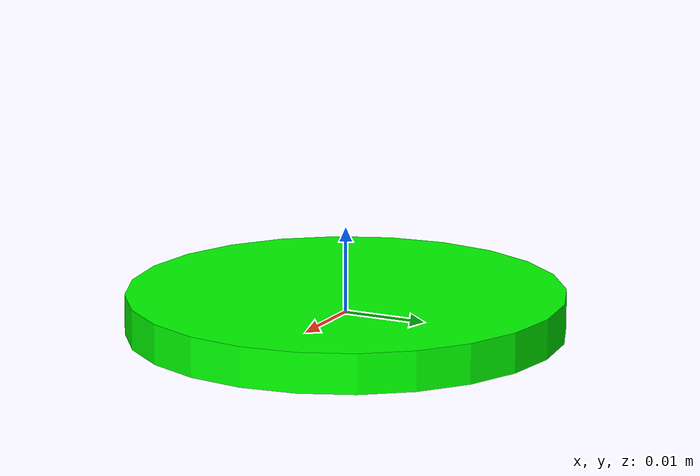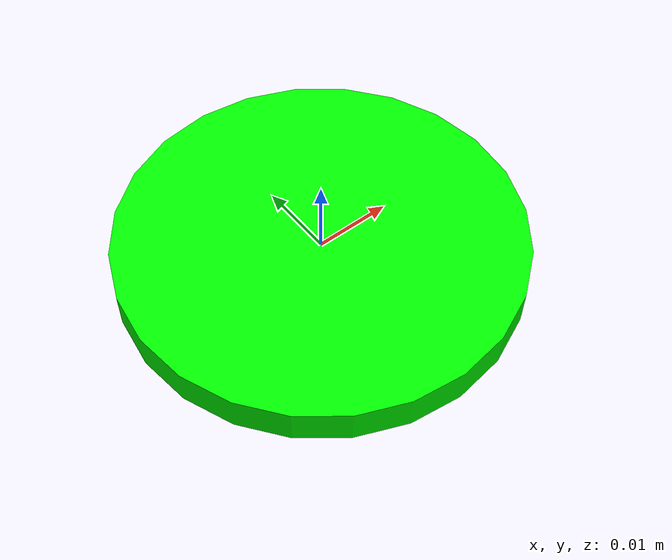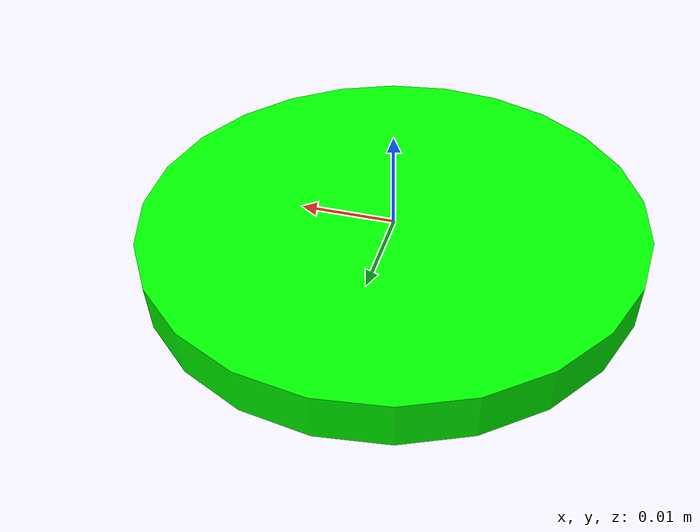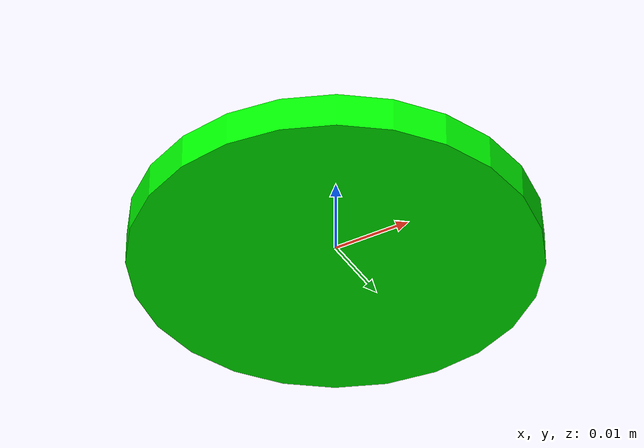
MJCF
<mujoco model="can">
  <asset>
    <mesh file="meshes/can.msh" name="can_mesh" scale="1 1 0.3"/>
    <texture file="../textures/soda.png" name="tex-can" type="2d"/>
    <material name="coke" reflectance="0.7" texrepeat="5 5" texture="tex-can" texuniform="true"/>
  </asset>
  <worldbody>
    <body>
      <body name="object">
        <geom pos="0 0 0" size="0.0255 0.00235" type="cylinder" solimp="0.998 0.998 0.001" solref="-10000 -6" density="1240" friction="0.013 0.3 0.1" rgba="0 1 0 1" group="0" condim="6"  />

      </body>
        <option>
          <flag multiccd="enable"/>
        </option>
      <site rgba="0 0 0 0" size="0.005" pos="0 0 -0.06" name="bottom_site"/>
      <site rgba="0 0 0 0" size="0.005" pos="0 0 0.04" name="top_site"/>
      <site rgba="0 0 0 0" size="0.005" pos="0.025 0.025 0" name="horizontal_radius_site"/>
    </body>
  </worldbody>
</mujoco>
